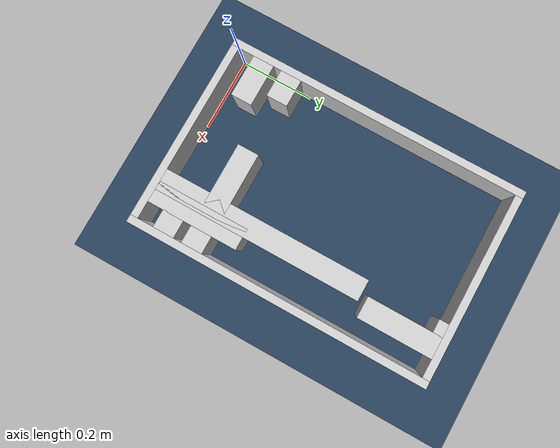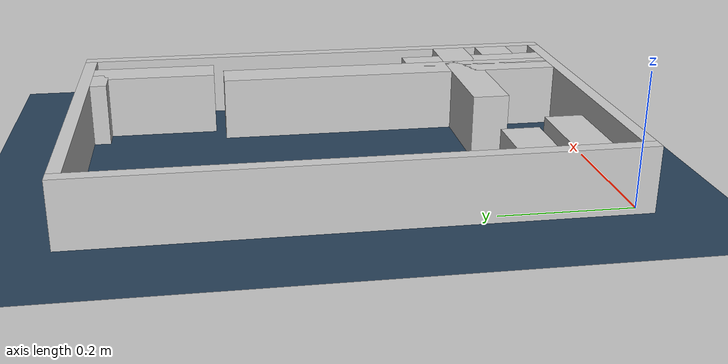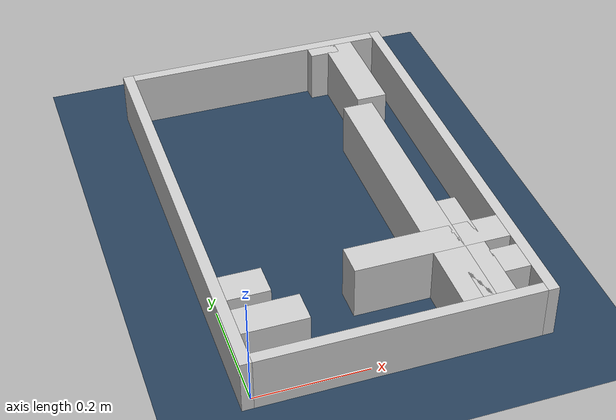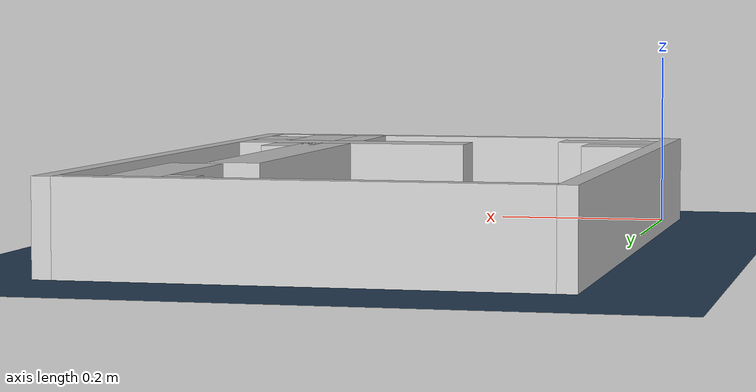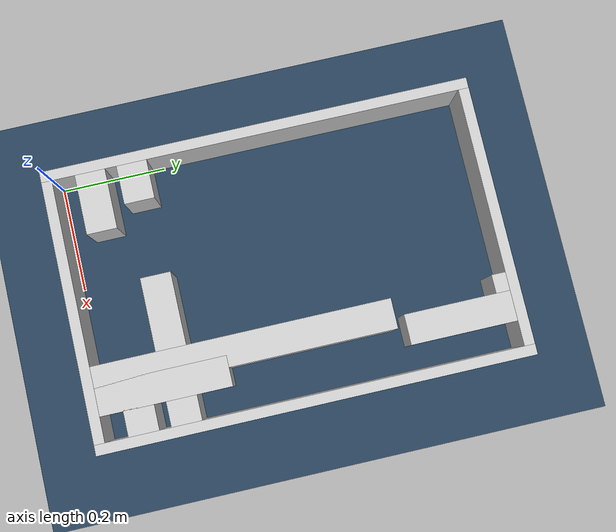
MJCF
<?xml version="1.0" ?>
<mujoco model="generated_real_template">
  <compiler angle="degree"/>
  <option timestep="0.002" integrator="implicitfast" iterations="100" cone="elliptic"/>
  <default>
    <geom density="1"/>
  </default>
  <asset>
    <texture builtin="gradient" height="3072" rgb1="0.3 0.5 0.7" rgb2="0 0 0" type="skybox" width="512"/>
    <texture builtin="checker" height="300" mark="edge" markrgb="0.8 0.8 0.8" name="groundplane" rgb1="0.2 0.3 0.4" rgb2="0.1 0.2 0.3" type="2d" width="300"/>
    <material name="groundplane" reflectance="0.2" texrepeat="5 5" texture="groundplane" texuniform="true"/>
  </asset>
  <worldbody>
    <light dir="0 0 -1" directional="true" pos="0 0 1.5"/>
    <geom name="floor" type="plane" condim="4" friction="0.5 0.005 0.001" material="groundplane" size="0 0 0.05"/>
    <body name="walls">
      <geom name="wall_boundary_left" type="box" condim="4" friction="1.0 0.005 0.0001" rgba="0.8 0.8 0.8 1" pos="-0.010000 0.387500 0.050000" euler="0 0 0.000000" size="0.010000 0.407500 0.050000"/>
      <geom name="wall_boundary_right" type="box" condim="4" friction="1.0 0.005 0.0001" rgba="0.8 0.8 0.8 1" pos="0.500000 0.387500 0.050000" euler="0 0 0.000000" size="0.010000 0.407500 0.050000"/>
      <geom name="wall_boundary_bottom" type="box" condim="4" friction="1.0 0.005 0.0001" rgba="0.8 0.8 0.8 1" pos="0.245000 -0.010000 0.050000" euler="0 0 0.000000" size="0.245000 0.010000 0.050000"/>
      <geom name="wall_boundary_top" type="box" condim="4" friction="1.0 0.005 0.0001" rgba="0.8 0.8 0.8 1" pos="0.245000 0.785000 0.050000" euler="0 0 0.000000" size="0.245000 0.010000 0.050000"/>
      <geom name="wall_inner_1_1" type="box" condim="4" friction="1.0 0.005 0.0001" rgba="0.8 0.8 0.8 1" pos="0.379931 0.279912 0.050000" euler="0 0 90.000000" size="0.279912 0.028500 0.050000"/>
      <geom name="wall_inner_1_2" type="box" condim="4" friction="1.0 0.005 0.0001" rgba="0.8 0.8 0.8 1" pos="0.379931 0.761966 0.050000" euler="0 0 90.000000" size="0.013034 0.028500 0.050000"/>
      <geom name="wall_inner_2_1" type="box" condim="4" friction="1.0 0.005 0.0001" rgba="0.8 0.8 0.8 1" pos="0.036839 0.150257 0.050000" euler="0 0 0.000000" size="0.036839 0.028500 0.050000"/>
      <geom name="wall_inner_2_2" type="box" condim="4" friction="1.0 0.005 0.0001" rgba="0.8 0.8 0.8 1" pos="0.352183 0.150257 0.050000" euler="0 0 0.000000" size="0.137817 0.028500 0.050000"/>
      <geom name="wall_inner_3_1" type="box" condim="4" friction="1.0 0.005 0.0001" rgba="0.8 0.8 0.8 1" pos="0.414479 0.122711 0.050000" euler="0 0 90.000000" size="0.122711 0.028500 0.050000"/>
      <geom name="wall_inner_3_2" type="box" condim="4" friction="1.0 0.005 0.0001" rgba="0.8 0.8 0.8 1" pos="0.414479 0.675455 0.050000" euler="0 0 90.000000" size="0.099545 0.028500 0.050000"/>
      <geom name="wall_inner_4_1" type="box" condim="4" friction="1.0 0.005 0.0001" rgba="0.8 0.8 0.8 1" pos="0.056907 0.071545 0.050000" euler="0 0 0.000000" size="0.056907 0.028500 0.050000"/>
      <geom name="wall_inner_4_2" type="box" condim="4" friction="1.0 0.005 0.0001" rgba="0.8 0.8 0.8 1" pos="0.465579 0.071545 0.050000" euler="0 0 0.000000" size="0.024421 0.028500 0.050000"/>
    </body>
  </worldbody>
</mujoco>
